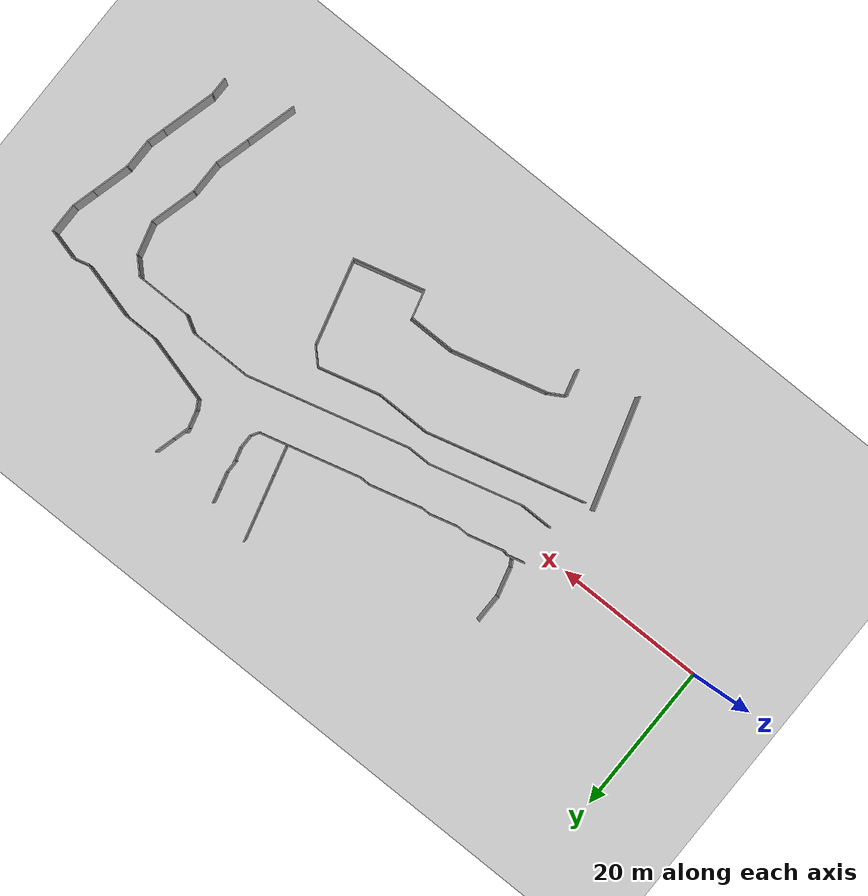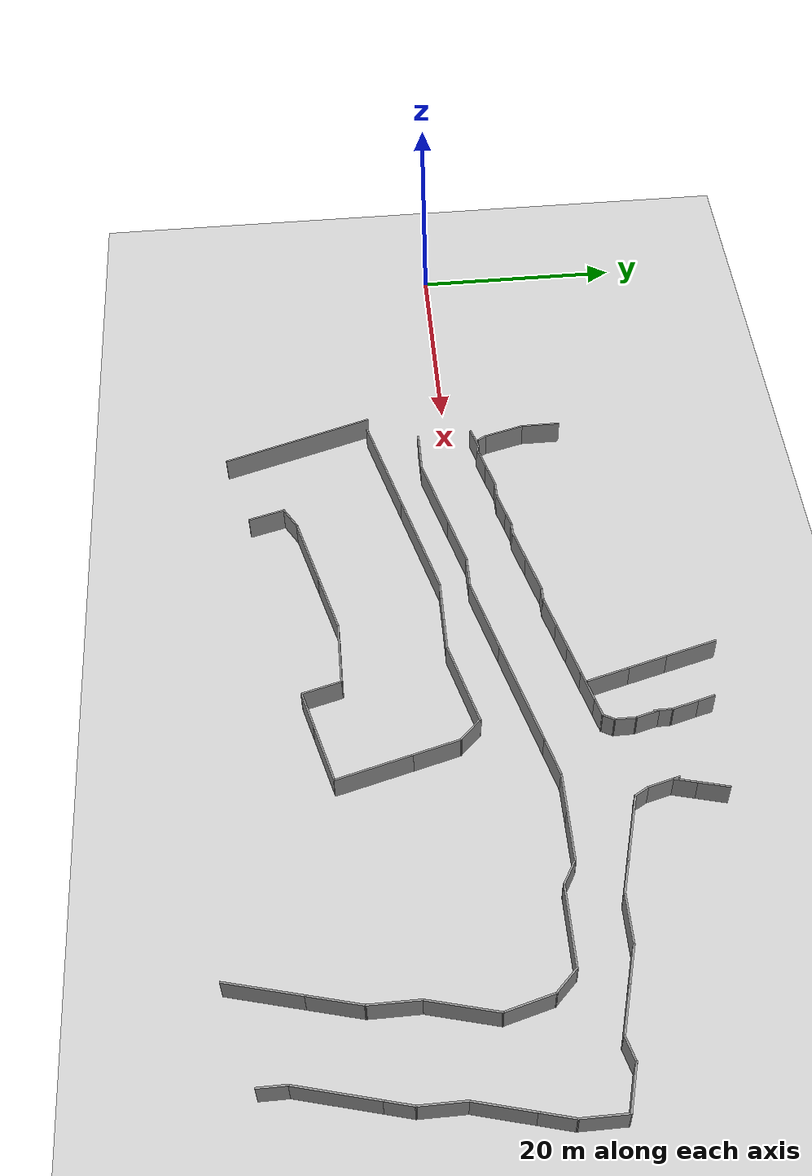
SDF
<sdf version="1.7">
 <world name="default">
  <model name="ground_plane">
   <static>1</static>
   <link name="link">
    <collision name="collision">
     <geometry><plane><normal>0 0 1</normal><size>500 500</size></plane></geometry>
     <surface><friction><ode><mu>100</mu><mu2>50</mu2></ode></friction></surface>
    </collision>
    <visual name="visual">
     <cast_shadows>0</cast_shadows>
     <geometry><plane><normal>0 0 1</normal><size>500 500</size></plane></geometry>
     <material>
      <script><uri>file://media/materials/scripts/gazebo.material</uri><name>Gazebo/Grey</name></script>
     </material>
    </visual>
   </link>
  </model>
  <model name="out_door1">
   <pose>25.5832 12.3476 0 0 -0 0</pose>
   <link name="Wall_119">
    <collision name="Wall_119_Collision">
     <geometry><box><size>2.5 0.15 2.5</size></box></geometry>
     <pose>0 0 1.25 0 -0 0</pose>
    </collision>
    <visual name="Wall_119_Visual">
     <pose>0 0 1.25 0 -0 0</pose>
     <geometry><box><size>2.5 0.15 2.5</size></box></geometry>
     <material>
      <script><uri>file://media/materials/scripts/gazebo.material</uri><name>Gazebo/Grey</name></script>
      <ambient>1 1 1 1</ambient>
     </material>
     <meta><layer>0</layer></meta>
    </visual>
    <pose>63.0354 -31.1015 0 0 -0 1.5708</pose>
   </link>
   <link name="Wall_123">
    <collision name="Wall_123_Collision">
     <geometry><box><size>7.25 0.15 2.5</size></box></geometry>
     <pose>0 0 1.25 0 -0 0</pose>
    </collision>
    <visual name="Wall_123_Visual">
     <pose>0 0 1.25 0 -0 0</pose>
     <geometry><box><size>7.25 0.15 2.5</size></box></geometry>
     <material>
      <script><uri>file://media/materials/scripts/gazebo.material</uri><name>Gazebo/Grey</name></script>
      <ambient>1 1 1 1</ambient>
     </material>
     <meta><layer>0</layer></meta>
    </visual>
    <pose>63.9542 -26.4975 0 0 -0 1.309</pose>
   </link>
   <link name="Wall_124">
    <collision name="Wall_124_Collision">
     <geometry><box><size>2.5 0.15 2.5</size></box></geometry>
     <pose>0 0 1.25 0 -0 0</pose>
    </collision>
    <visual name="Wall_124_Visual">
     <pose>0 0 1.25 0 -0 0</pose>
     <geometry><box><size>2.5 0.15 2.5</size></box></geometry>
     <material>
      <script><uri>file://media/materials/scripts/gazebo.material</uri><name>Gazebo/Grey</name></script>
      <ambient>1 1 1 1</ambient>
     </material>
     <meta><layer>0</layer></meta>
    </visual>
    <pose>65.1772 -21.9335 0 0 -0 1.309</pose>
   </link>
   <link name="Wall_125">
    <collision name="Wall_125_Collision">
     <geometry><box><size>4 0.15 2.5</size></box></geometry>
     <pose>0 0 1.25 0 -0 0</pose>
    </collision>
    <visual name="Wall_125_Visual">
     <pose>0 0 1.25 0 -0 0</pose>
     <geometry><box><size>4 0.15 2.5</size></box></geometry>
     <material>
      <script><uri>file://media/materials/scripts/gazebo.material</uri><name>Gazebo/Grey</name></script>
      <ambient>1 1 1 1</ambient>
     </material>
     <meta><layer>0</layer></meta>
    </visual>
    <pose>65.4813 -18.8735 0 0 -0 1.5708</pose>
   </link>
   <link name="Wall_126">
    <collision name="Wall_126_Collision">
     <geometry><box><size>5.25 0.15 2.5</size></box></geometry>
     <pose>0 0 1.25 0 -0 0</pose>
    </collision>
    <visual name="Wall_126_Visual">
     <pose>0 0 1.25 0 -0 0</pose>
     <geometry><box><size>5.25 0.15 2.5</size></box></geometry>
     <material>
      <script><uri>file://media/materials/scripts/gazebo.material</uri><name>Gazebo/Grey</name></script>
      <ambient>1 1 1 1</ambient>
     </material>
     <meta><layer>0</layer></meta>
    </visual>
    <pose>66.1413 -14.4854 0 0 -0 1.309</pose>
   </link>
   <link name="Wall_127">
    <collision name="Wall_127_Collision">
     <geometry><box><size>3 0.15 2.5</size></box></geometry>
     <pose>0 0 1.25 0 -0 0</pose>
    </collision>
    <visual name="Wall_127_Visual">
     <pose>0 0 1.25 0 -0 0</pose>
     <geometry><box><size>3 0.15 2.5</size></box></geometry>
     <material>
      <script><uri>file://media/materials/scripts/gazebo.material</uri><name>Gazebo/Grey</name></script>
      <ambient>1 1 1 1</ambient>
     </material>
     <meta><layer>0</layer></meta>
    </visual>
    <pose>67.1701 -10.6458 0 0 -0 1.309</pose>
   </link>
   <link name="Wall_128">
    <collision name="Wall_128_Collision">
     <geometry><box><size>4 0.15 2.5</size></box></geometry>
     <pose>0 0 1.25 0 -0 0</pose>
    </collision>
    <visual name="Wall_128_Visual">
     <pose>0 0 1.25 0 -0 0</pose>
     <geometry><box><size>4 0.15 2.5</size></box></geometry>
     <material>
      <script><uri>file://media/materials/scripts/gazebo.material</uri><name>Gazebo/Grey</name></script>
      <ambient>1 1 1 1</ambient>
     </material>
     <meta><layer>0</layer></meta>
    </visual>
    <pose>67.5389 -7.34439 0 0 -0 1.5708</pose>
   </link>
   <link name="Wall_129">
    <collision name="Wall_129_Collision">
     <geometry><box><size>4 0.15 2.5</size></box></geometry>
     <pose>0 0 1.25 0 -0 0</pose>
    </collision>
    <visual name="Wall_129_Visual">
     <pose>0 0 1.25 0 -0 0</pose>
     <geometry><box><size>4 0.15 2.5</size></box></geometry>
     <material>
      <script><uri>file://media/materials/scripts/gazebo.material</uri><name>Gazebo/Grey</name></script>
      <ambient>1 1 1 1</ambient>
     </material>
     <meta><layer>0</layer></meta>
    </visual>
    <pose>65.6795 -4.92117 0 0 -0 2.87979</pose>
   </link>
   <link name="Wall_130">
    <collision name="Wall_130_Collision">
     <geometry><box><size>2.25 0.15 2.5</size></box></geometry>
     <pose>0 0 1.25 0 -0 0</pose>
    </collision>
    <visual name="Wall_130_Visual">
     <pose>0 0 1.25 0 -0 0</pose>
     <geometry><box><size>2.25 0.15 2.5</size></box></geometry>
     <material>
      <script><uri>file://media/materials/scripts/gazebo.material</uri><name>Gazebo/Grey</name></script>
      <ambient>1 1 1 1</ambient>
     </material>
     <meta><layer>0</layer></meta>
    </visual>
    <pose>62.8059 -4.6947 0 0 -0 -2.87979</pose>
   </link>
   <link name="Wall_131">
    <collision name="Wall_131_Collision">
     <geometry><box><size>4.25 0.15 2.5</size></box></geometry>
     <pose>0 0 1.25 0 -0 0</pose>
    </collision>
    <visual name="Wall_131_Visual">
     <pose>0 0 1.25 0 -0 0</pose>
     <geometry><box><size>4.25 0.15 2.5</size></box></geometry>
     <material>
      <script><uri>file://media/materials/scripts/gazebo.material</uri><name>Gazebo/Grey</name></script>
      <ambient>1 1 1 1</ambient>
     </material>
     <meta><layer>0</layer></meta>
    </visual>
    <pose>59.8115 -4.43588 0 0 -0 2.87979</pose>
   </link>
   <link name="Wall_132">
    <collision name="Wall_132_Collision">
     <geometry><box><size>3.5 0.15 2.5</size></box></geometry>
     <pose>0 0 1.25 0 -0 0</pose>
    </collision>
    <visual name="Wall_132_Visual">
     <pose>0 0 1.25 0 -0 0</pose>
     <geometry><box><size>3.5 0.15 2.5</size></box></geometry>
     <material>
      <script><uri>file://media/materials/scripts/gazebo.material</uri><name>Gazebo/Grey</name></script>
      <ambient>1 1 1 1</ambient>
     </material>
     <meta><layer>0</layer></meta>
    </visual>
    <pose>56.2134 -3.47178 0 0 -0 2.87979</pose>
   </link>
   <link name="Wall_133">
    <collision name="Wall_133_Collision">
     <geometry><box><size>4.5 0.15 2.5</size></box></geometry>
     <pose>0 0 1.25 0 -0 0</pose>
    </collision>
    <visual name="Wall_133_Visual">
     <pose>0 0 1.25 0 -0 0</pose>
     <geometry><box><size>4.5 0.15 2.5</size></box></geometry>
     <material>
      <script><uri>file://media/materials/scripts/gazebo.material</uri><name>Gazebo/Grey</name></script>
      <ambient>1 1 1 1</ambient>
     </material>
     <meta><layer>0</layer></meta>
    </visual>
    <pose>52.4205 -3.03826 0 0 -0 3.14159</pose>
   </link>
   <link name="Wall_134">
    <collision name="Wall_134_Collision">
     <geometry><box><size>3 0.15 2.5</size></box></geometry>
     <pose>0 0 1.25 0 -0 0</pose>
    </collision>
    <visual name="Wall_134_Visual">
     <pose>0 0 1.25 0 -0 0</pose>
     <geometry><box><size>3 0.15 2.5</size></box></geometry>
     <material>
      <script><uri>file://media/materials/scripts/gazebo.material</uri><name>Gazebo/Grey</name></script>
      <ambient>1 1 1 1</ambient>
     </material>
     <meta><layer>0</layer></meta>
    </visual>
    <pose>48.869 -2.66944 0 0 -0 2.87979</pose>
   </link>
   <link name="Wall_135">
    <collision name="Wall_135_Collision">
     <geometry><box><size>6.25 0.15 2.5</size></box></geometry>
     <pose>0 0 1.25 0 -0 0</pose>
    </collision>
    <visual name="Wall_135_Visual">
     <pose>0 0 1.25 0 -0 0</pose>
     <geometry><box><size>6.25 0.15 2.5</size></box></geometry>
     <material>
      <script><uri>file://media/materials/scripts/gazebo.material</uri><name>Gazebo/Grey</name></script>
      <ambient>1 1 1 1</ambient>
     </material>
     <meta><layer>0</layer></meta>
    </visual>
    <pose>44.5465 -1.51123 0 0 -0 2.87979</pose>
   </link>
   <link name="Wall_136">
    <collision name="Wall_136_Collision">
     <geometry><box><size>1.5 0.15 2.5</size></box></geometry>
     <pose>0 0 1.25 0 -0 0</pose>
    </collision>
    <visual name="Wall_136_Visual">
     <pose>0 0 1.25 0 -0 0</pose>
     <geometry><box><size>1.5 0.15 2.5</size></box></geometry>
     <material>
      <script><uri>file://media/materials/scripts/gazebo.material</uri><name>Gazebo/Grey</name></script>
      <ambient>1 1 1 1</ambient>
     </material>
     <meta><layer>0</layer></meta>
    </visual>
    <pose>41.2629 -0.137262 0 0 -0 2.0944</pose>
   </link>
   <link name="Wall_137">
    <collision name="Wall_137_Collision">
     <geometry><box><size>3 0.15 2.5</size></box></geometry>
     <pose>0 0 1.25 0 -0 0</pose>
    </collision>
    <visual name="Wall_137_Visual">
     <pose>0 0 1.25 0 -0 0</pose>
     <geometry><box><size>3 0.15 2.5</size></box></geometry>
     <material>
      <script><uri>file://media/materials/scripts/gazebo.material</uri><name>Gazebo/Grey</name></script>
      <ambient>1 1 1 1</ambient>
     </material>
     <meta><layer>0</layer></meta>
    </visual>
    <pose>40.5566 1.82375 0 0 -0 1.8326</pose>
   </link>
   <link name="Wall_139">
    <collision name="Wall_139_Collision">
     <geometry><box><size>2.25 0.15 2.5</size></box></geometry>
     <pose>0 0 1.25 0 -0 0</pose>
    </collision>
    <visual name="Wall_139_Visual">
     <pose>0 0 1.25 0 -0 0</pose>
     <geometry><box><size>2.25 0.15 2.5</size></box></geometry>
     <material>
      <script><uri>file://media/materials/scripts/gazebo.material</uri><name>Gazebo/Grey</name></script>
      <ambient>1 1 1 1</ambient>
     </material>
     <meta><layer>0</layer></meta>
    </visual>
    <pose>40.599 3.69792 0 0 -0 1.309</pose>
   </link>
   <link name="Wall_140">
    <collision name="Wall_140_Collision">
     <geometry><box><size>2.75 0.15 2.5</size></box></geometry>
     <pose>0 0 1.25 0 -0 0</pose>
    </collision>
    <visual name="Wall_140_Visual">
     <pose>0 0 1.25 0 -0 0</pose>
     <geometry><box><size>2.75 0.15 2.5</size></box></geometry>
     <material>
      <script><uri>file://media/materials/scripts/gazebo.material</uri><name>Gazebo/Grey</name></script>
      <ambient>1 1 1 1</ambient>
     </material>
     <meta><layer>0</layer></meta>
    </visual>
    <pose>41.2073 5.96784 0 0 -0 1.309</pose>
   </link>
   <link name="Wall_355">
    <collision name="Wall_355_Collision">
     <geometry><box><size>1.75 0.15 2.5</size></box></geometry>
     <pose>0 0 1.25 0 -0 0</pose>
    </collision>
    <visual name="Wall_355_Visual">
     <pose>0 0 1.25 0 -0 0</pose>
     <geometry><box><size>1.75 0.15 2.5</size></box></geometry>
     <material>
      <script><uri>file://media/materials/scripts/gazebo.material</uri><name>Gazebo/Grey</name></script>
      <ambient>1 1 1 1</ambient>
     </material>
     <meta><layer>0</layer></meta>
    </visual>
    <pose>32.6842 6.92274 0 0 -0 -1.309</pose>
   </link>
   <link name="Wall_356">
    <collision name="Wall_356_Collision">
     <geometry><box><size>2.5 0.15 2.5</size></box></geometry>
     <pose>0 0 1.25 0 -0 0</pose>
    </collision>
    <visual name="Wall_356_Visual">
     <pose>0 0 1.25 0 -0 0</pose>
     <geometry><box><size>2.5 0.15 2.5</size></box></geometry>
     <material>
      <script><uri>file://media/materials/scripts/gazebo.material</uri><name>Gazebo/Grey</name></script>
      <ambient>1 1 1 1</ambient>
     </material>
     <meta><layer>0</layer></meta>
    </visual>
    <pose>33.1954 5.01504 0 0 -0 -1.309</pose>
   </link>
   <link name="Wall_357">
    <collision name="Wall_357_Collision">
     <geometry><box><size>1.75 0.15 2.5</size></box></geometry>
     <pose>0 0 1.25 0 -0 0</pose>
    </collision>
    <visual name="Wall_357_Visual">
     <pose>0 0 1.25 0 -0 0</pose>
     <geometry><box><size>1.75 0.15 2.5</size></box></geometry>
     <material>
      <script><uri>file://media/materials/scripts/gazebo.material</uri><name>Gazebo/Grey</name></script>
      <ambient>1 1 1 1</ambient>
     </material>
     <meta><layer>0</layer></meta>
    </visual>
    <pose>33.4995 3.08008 0 0 -0 -1.5708</pose>
   </link>
   <link name="Wall_359">
    <collision name="Wall_359_Collision">
     <geometry><box><size>2.25 0.15 2.5</size></box></geometry>
     <pose>0 0 1.25 0 -0 0</pose>
    </collision>
    <visual name="Wall_359_Visual">
     <pose>0 0 1.25 0 -0 0</pose>
     <geometry><box><size>2.25 0.15 2.5</size></box></geometry>
     <material>
      <script><uri>file://media/materials/scripts/gazebo.material</uri><name>Gazebo/Grey</name></script>
      <ambient>1 1 1 1</ambient>
     </material>
     <meta><layer>0</layer></meta>
    </visual>
    <pose>33.7873 1.63859 0 0 -0 -1.309</pose>
   </link>
   <link name="Wall_360">
    <collision name="Wall_360_Collision">
     <geometry><box><size>2 0.15 2.5</size></box></geometry>
     <pose>0 0 1.25 0 -0 0</pose>
    </collision>
    <visual name="Wall_360_Visual">
     <pose>0 0 1.25 0 -0 0</pose>
     <geometry><box><size>2 0.15 2.5</size></box></geometry>
     <material>
      <script><uri>file://media/materials/scripts/gazebo.material</uri><name>Gazebo/Grey</name></script>
      <ambient>1 1 1 1</ambient>
     </material>
     <meta><layer>0</layer></meta>
    </visual>
    <pose>34.0591 -0.300634 0 0 -0 -1.5708</pose>
   </link>
   <link name="Wall_361">
    <collision name="Wall_361_Collision">
     <geometry><box><size>1.25 0.15 2.5</size></box></geometry>
     <pose>0 0 1.25 0 -0 0</pose>
    </collision>
    <visual name="Wall_361_Visual">
     <pose>0 0 1.25 0 -0 0</pose>
     <geometry><box><size>1.25 0.15 2.5</size></box></geometry>
     <material>
      <script><uri>file://media/materials/scripts/gazebo.material</uri><name>Gazebo/Grey</name></script>
      <ambient>1 1 1 1</ambient>
     </material>
     <meta><layer>0</layer></meta>
    </visual>
    <pose>33.7841 -1.70195 0 0 -0 -2.0944</pose>
   </link>
   <link name="Wall_362">
    <collision name="Wall_362_Collision">
     <geometry><box><size>1.75 0.15 2.5</size></box></geometry>
     <pose>0 0 1.25 0 -0 0</pose>
    </collision>
    <visual name="Wall_362_Visual">
     <pose>0 0 1.25 0 -0 0</pose>
     <geometry><box><size>1.75 0.15 2.5</size></box></geometry>
     <material>
      <script><uri>file://media/materials/scripts/gazebo.material</uri><name>Gazebo/Grey</name></script>
      <ambient>1 1 1 1</ambient>
     </material>
     <meta><layer>0</layer></meta>
    </visual>
    <pose>32.7363 -2.38532 0 0 -0 -2.87979</pose>
   </link>
   <link name="Wall_363">
    <collision name="Wall_363_Collision">
     <geometry><box><size>3.25 0.15 2.5</size></box></geometry>
     <pose>0 0 1.25 0 -0 0</pose>
    </collision>
    <visual name="Wall_363_Visual">
     <pose>0 0 1.25 0 -0 0</pose>
     <geometry><box><size>3.25 0.15 2.5</size></box></geometry>
     <material>
      <script><uri>file://media/materials/scripts/gazebo.material</uri><name>Gazebo/Grey</name></script>
      <ambient>1 1 1 1</ambient>
     </material>
     <meta><layer>0</layer></meta>
    </visual>
    <pose>30.4664 -2.99354 0 0 -0 -2.87979</pose>
   </link>
   <link name="Wall_364">
    <collision name="Wall_364_Collision">
     <geometry><box><size>3 0.15 2.5</size></box></geometry>
     <pose>0 0 1.25 0 -0 0</pose>
    </collision>
    <visual name="Wall_364_Visual">
     <pose>0 0 1.25 0 -0 0</pose>
     <geometry><box><size>3 0.15 2.5</size></box></geometry>
     <material>
      <script><uri>file://media/materials/scripts/gazebo.material</uri><name>Gazebo/Grey</name></script>
      <ambient>1 1 1 1</ambient>
     </material>
     <meta><layer>0</layer></meta>
    </visual>
    <pose>27.5928 -3.76353 0 0 -0 -2.87979</pose>
   </link>
   <link name="Wall_366">
    <collision name="Wall_366_Collision">
     <geometry><box><size>2.75 0.15 2.5</size></box></geometry>
     <pose>0 0 1.25 0 -0 0</pose>
    </collision>
    <visual name="Wall_366_Visual">
     <pose>0 0 1.25 0 -0 0</pose>
     <geometry><box><size>2.75 0.15 2.5</size></box></geometry>
     <material>
      <script><uri>file://media/materials/scripts/gazebo.material</uri><name>Gazebo/Grey</name></script>
      <ambient>1 1 1 1</ambient>
     </material>
     <meta><layer>0</layer></meta>
    </visual>
    <pose>24.9606 -4.46881 0 0 -0 -2.87979</pose>
   </link>
   <link name="Wall_367">
    <collision name="Wall_367_Collision">
     <geometry><box><size>3.25 0.15 2.5</size></box></geometry>
     <pose>0 0 1.25 0 -0 0</pose>
    </collision>
    <visual name="Wall_367_Visual">
     <pose>0 0 1.25 0 -0 0</pose>
     <geometry><box><size>3.25 0.15 2.5</size></box></geometry>
     <material>
      <script><uri>file://media/materials/scripts/gazebo.material</uri><name>Gazebo/Grey</name></script>
      <ambient>1 1 1 1</ambient>
     </material>
     <meta><layer>0</layer></meta>
    </visual>
    <pose>22.2077 -5.20645 0 0 -0 -2.87979</pose>
   </link>
   <link name="Wall_368">
    <collision name="Wall_368_Collision">
     <geometry><box><size>1.5 0.15 2.5</size></box></geometry>
     <pose>0 0 1.25 0 -0 0</pose>
    </collision>
    <visual name="Wall_368_Visual">
     <pose>0 0 1.25 0 -0 0</pose>
     <geometry><box><size>1.5 0.15 2.5</size></box></geometry>
     <material>
      <script><uri>file://media/materials/scripts/gazebo.material</uri><name>Gazebo/Grey</name></script>
      <ambient>1 1 1 1</ambient>
     </material>
     <meta><layer>0</layer></meta>
    </visual>
    <pose>20.0356 -5.60762 0 0 -0 3.14159</pose>
   </link>
   <link name="Wall_369">
    <collision name="Wall_369_Collision">
     <geometry><box><size>3.75 0.15 2.5</size></box></geometry>
     <pose>0 0 1.25 0 -0 0</pose>
    </collision>
    <visual name="Wall_369_Visual">
     <pose>0 0 1.25 0 -0 0</pose>
     <geometry><box><size>3.75 0.15 2.5</size></box></geometry>
     <material>
      <script><uri>file://media/materials/scripts/gazebo.material</uri><name>Gazebo/Grey</name></script>
      <ambient>1 1 1 1</ambient>
     </material>
     <meta><layer>0</layer></meta>
    </visual>
    <pose>17.6219 -6.07349 0 0 -0 -2.87979</pose>
   </link>
   <link name="Wall_370">
    <collision name="Wall_370_Collision">
     <geometry><box><size>3.5 0.15 2.5</size></box></geometry>
     <pose>0 0 1.25 0 -0 0</pose>
    </collision>
    <visual name="Wall_370_Visual">
     <pose>0 0 1.25 0 -0 0</pose>
     <geometry><box><size>3.5 0.15 2.5</size></box></geometry>
     <material>
      <script><uri>file://media/materials/scripts/gazebo.material</uri><name>Gazebo/Grey</name></script>
      <ambient>1 1 1 1</ambient>
     </material>
     <meta><layer>0</layer></meta>
    </visual>
    <pose>14.2653 -6.97288 0 0 -0 -2.87979</pose>
   </link>
   <link name="Wall_371">
    <collision name="Wall_371_Collision">
     <geometry><box><size>1.25 0.15 2.5</size></box></geometry>
     <pose>0 0 1.25 0 -0 0</pose>
    </collision>
    <visual name="Wall_371_Visual">
     <pose>0 0 1.25 0 -0 0</pose>
     <geometry><box><size>1.25 0.15 2.5</size></box></geometry>
     <material>
      <script><uri>file://media/materials/scripts/gazebo.material</uri><name>Gazebo/Grey</name></script>
      <ambient>1 1 1 1</ambient>
     </material>
     <meta><layer>0</layer></meta>
    </visual>
    <pose>12.0974 -7.40641 0 0 -0 3.14159</pose>
   </link>
   <link name="Wall_372">
    <collision name="Wall_372_Collision">
     <geometry><box><size>1.5 0.15 2.5</size></box></geometry>
     <pose>0 0 1.25 0 -0 0</pose>
    </collision>
    <visual name="Wall_372_Visual">
     <pose>0 0 1.25 0 -0 0</pose>
     <geometry><box><size>1.5 0.15 2.5</size></box></geometry>
     <material>
      <script><uri>file://media/materials/scripts/gazebo.material</uri><name>Gazebo/Grey</name></script>
      <ambient>1 1 1 1</ambient>
     </material>
     <meta><layer>0</layer></meta>
    </visual>
    <pose>10.8954 -7.58111 0 0 -0 -2.87979</pose>
   </link>
   <link name="Wall_373">
    <collision name="Wall_373_Collision">
     <geometry><box><size>2.5 0.15 2.5</size></box></geometry>
     <pose>0 0 1.25 0 -0 0</pose>
    </collision>
    <visual name="Wall_373_Visual">
     <pose>0 0 1.25 0 -0 0</pose>
     <geometry><box><size>2.5 0.15 2.5</size></box></geometry>
     <material>
      <script><uri>file://media/materials/scripts/gazebo.material</uri><name>Gazebo/Grey</name></script>
      <ambient>1 1 1 1</ambient>
     </material>
     <meta><layer>0</layer></meta>
    </visual>
    <pose>9.1084 -8.05992 0 0 -0 -2.87979</pose>
   </link>
   <link name="Wall_374">
    <collision name="Wall_374_Collision">
     <geometry><box><size>1.75 0.15 2.5</size></box></geometry>
     <pose>0 0 1.25 0 -0 0</pose>
    </collision>
    <visual name="Wall_374_Visual">
     <pose>0 0 1.25 0 -0 0</pose>
     <geometry><box><size>1.75 0.15 2.5</size></box></geometry>
     <material>
      <script><uri>file://media/materials/scripts/gazebo.material</uri><name>Gazebo/Grey</name></script>
      <ambient>1 1 1 1</ambient>
     </material>
     <meta><layer>0</layer></meta>
    </visual>
    <pose>7.17344 -8.36404 0 0 -0 3.14159</pose>
   </link>
   <link name="Wall_375">
    <collision name="Wall_375_Collision">
     <geometry><box><size>2.5 0.15 2.5</size></box></geometry>
     <pose>0 0 1.25 0 -0 0</pose>
    </collision>
    <visual name="Wall_375_Visual">
     <pose>0 0 1.25 0 -0 0</pose>
     <geometry><box><size>2.5 0.15 2.5</size></box></geometry>
     <material>
      <script><uri>file://media/materials/scripts/gazebo.material</uri><name>Gazebo/Grey</name></script>
      <ambient>1 1 1 1</ambient>
     </material>
     <meta><layer>0</layer></meta>
    </visual>
    <pose>5.23848 -8.66815 0 0 -0 -2.87979</pose>
   </link>
   <link name="Wall_376">
    <collision name="Wall_376_Collision">
     <geometry><box><size>2.5 0.15 2.5</size></box></geometry>
     <pose>0 0 1.25 0 -0 0</pose>
    </collision>
    <visual name="Wall_376_Visual">
     <pose>0 0 1.25 0 -0 0</pose>
     <geometry><box><size>2.5 0.15 2.5</size></box></geometry>
     <material>
      <script><uri>file://media/materials/scripts/gazebo.material</uri><name>Gazebo/Grey</name></script>
      <ambient>1 1 1 1</ambient>
     </material>
     <meta><layer>0</layer></meta>
    </visual>
    <pose>2.96855 -9.27637 0 0 -0 -2.87979</pose>
   </link>
   <link name="Wall_381">
    <collision name="Wall_381_Collision">
     <geometry><box><size>0.75 0.15 2.5</size></box></geometry>
     <pose>0 0 1.25 0 -0 0</pose>
    </collision>
    <visual name="Wall_381_Visual">
     <pose>0 0 1.25 0 -0 0</pose>
     <geometry><box><size>0.75 0.15 2.5</size></box></geometry>
     <material>
      <script><uri>file://media/materials/scripts/gazebo.material</uri><name>Gazebo/Grey</name></script>
      <ambient>1 1 1 1</ambient>
     </material>
     <meta><layer>0</layer></meta>
    </visual>
    <pose>1.54381 -9.50284 0 0 -0 2.87979</pose>
   </link>
   <link name="Wall_382">
    <collision name="Wall_382_Collision">
     <geometry><box><size>2.25 0.15 2.5</size></box></geometry>
     <pose>0 0 1.25 0 -0 0</pose>
    </collision>
    <visual name="Wall_382_Visual">
     <pose>0 0 1.25 0 -0 0</pose>
     <geometry><box><size>2.25 0.15 2.5</size></box></geometry>
     <material>
      <script><uri>file://media/materials/scripts/gazebo.material</uri><name>Gazebo/Grey</name></script>
      <ambient>1 1 1 1</ambient>
     </material>
     <meta><layer>0</layer></meta>
    </visual>
    <pose>0.239811 -9.69696 0 0 -0 -2.87979</pose>
   </link>
   <link name="Wall_446">
    <collision name="Wall_446_Collision">
     <geometry><box><size>3.75 0.15 2.5</size></box></geometry>
     <pose>0 0 1.25 0 -0 0</pose>
    </collision>
    <visual name="Wall_446_Visual">
     <pose>0 0 1.25 0 -0 0</pose>
     <geometry><box><size>3.75 0.15 2.5</size></box></geometry>
     <material>
      <script><uri>file://media/materials/scripts/gazebo.material</uri><name>Gazebo/Grey</name></script>
      <ambient>1 1 1 1</ambient>
     </material>
     <meta><layer>0</layer></meta>
    </visual>
    <pose>-0.980412 -3.05886 0 0 -0 -1.5708</pose>
   </link>
   <link name="Wall_447">
    <collision name="Wall_447_Collision">
     <geometry><box><size>4 0.15 2.5</size></box></geometry>
     <pose>0 0 1.25 0 -0 0</pose>
    </collision>
    <visual name="Wall_447_Visual">
     <pose>0 0 1.25 0 -0 0</pose>
     <geometry><box><size>4 0.15 2.5</size></box></geometry>
     <material>
      <script><uri>file://media/materials/scripts/gazebo.material</uri><name>Gazebo/Grey</name></script>
      <ambient>1 1 1 1</ambient>
     </material>
     <meta><layer>0</layer></meta>
    </visual>
    <pose>-0.482185 -6.71826 0 0 -0 -1.309</pose>
   </link>
   <link name="Wall_448">
    <collision name="Wall_448_Collision">
     <geometry><box><size>1 0.15 2.5</size></box></geometry>
     <pose>0 0 1.25 0 -0 0</pose>
    </collision>
    <visual name="Wall_448_Visual">
     <pose>0 0 1.25 0 -0 0</pose>
     <geometry><box><size>1 0.15 2.5</size></box></geometry>
     <material>
      <script><uri>file://media/materials/scripts/gazebo.material</uri><name>Gazebo/Grey</name></script>
      <ambient>1 1 1 1</ambient>
     </material>
     <meta><layer>0</layer></meta>
    </visual>
    <pose>0.228542 -8.94573 0 0 -0 -1.0472</pose>
   </link>
   <link name="Wall_473">
    <collision name="Wall_473_Collision">
     <geometry><box><size>5 0.15 2.5</size></box></geometry>
     <pose>0 0 1.25 0 -0 0</pose>
    </collision>
    <visual name="Wall_473_Visual">
     <pose>0 0 1.25 0 -0 0</pose>
     <geometry><box><size>5 0.15 2.5</size></box></geometry>
     <material>
      <script><uri>file://media/materials/scripts/gazebo.material</uri><name>Gazebo/Grey</name></script>
      <ambient>1 1 1 1</ambient>
     </material>
     <meta><layer>0</layer></meta>
    </visual>
    <pose>27.3452 6.61122 0 0 -0 -1.309</pose>
   </link>
   <link name="Wall_474">
    <collision name="Wall_474_Collision">
     <geometry><box><size>3.75 0.15 2.5</size></box></geometry>
     <pose>0 0 1.25 0 -0 0</pose>
    </collision>
    <visual name="Wall_474_Visual">
     <pose>0 0 1.25 0 -0 0</pose>
     <geometry><box><size>3.75 0.15 2.5</size></box></geometry>
     <material>
      <script><uri>file://media/materials/scripts/gazebo.material</uri><name>Gazebo/Grey</name></script>
      <ambient>1 1 1 1</ambient>
     </material>
     <meta><layer>0</layer></meta>
    </visual>
    <pose>28.4387 2.53018 0 0 -0 -1.309</pose>
   </link>
   <link name="Wall_475">
    <collision name="Wall_475_Collision">
     <geometry><box><size>4 0.15 2.5</size></box></geometry>
     <pose>0 0 1.25 0 -0 0</pose>
    </collision>
    <visual name="Wall_475_Visual">
     <pose>0 0 1.25 0 -0 0</pose>
     <geometry><box><size>4 0.15 2.5</size></box></geometry>
     <material>
      <script><uri>file://media/materials/scripts/gazebo.material</uri><name>Gazebo/Grey</name></script>
      <ambient>1 1 1 1</ambient>
     </material>
     <meta><layer>0</layer></meta>
    </visual>
    <pose>29.4028 -1.0679 0 0 -0 -1.309</pose>
   </link>
   <link name="Wall_496">
    <collision name="Wall_496_Collision">
     <geometry><box><size>6.75 0.15 2.5</size></box></geometry>
     <pose>0 0 1.25 0 -0 0</pose>
    </collision>
    <visual name="Wall_496_Visual">
     <pose>0 0 1.25 0 -0 0</pose>
     <geometry><box><size>6.75 0.15 2.5</size></box></geometry>
     <material>
      <script><uri>file://media/materials/scripts/gazebo.material</uri><name>Gazebo/Grey</name></script>
      <ambient>1 1 1 1</ambient>
     </material>
     <meta><layer>0</layer></meta>
    </visual>
    <pose>55.4529 -31.6026 0 0 -0 1.309</pose>
   </link>
   <link name="Wall_497">
    <collision name="Wall_497_Collision">
     <geometry><box><size>4.75 0.15 2.5</size></box></geometry>
     <pose>0 0 1.25 0 -0 0</pose>
    </collision>
    <visual name="Wall_497_Visual">
     <pose>0 0 1.25 0 -0 0</pose>
     <geometry><box><size>4.75 0.15 2.5</size></box></geometry>
     <material>
      <script><uri>file://media/materials/scripts/gazebo.material</uri><name>Gazebo/Grey</name></script>
      <ambient>1 1 1 1</ambient>
     </material>
     <meta><layer>0</layer></meta>
    </visual>
    <pose>56.9023 -26.1934 0 0 -0 1.309</pose>
   </link>
   <link name="Wall_498">
    <collision name="Wall_498_Collision">
     <geometry><box><size>4.5 0.15 2.5</size></box></geometry>
     <pose>0 0 1.25 0 -0 0</pose>
    </collision>
    <visual name="Wall_498_Visual">
     <pose>0 0 1.25 0 -0 0</pose>
     <geometry><box><size>4.5 0.15 2.5</size></box></geometry>
     <material>
      <script><uri>file://media/materials/scripts/gazebo.material</uri><name>Gazebo/Grey</name></script>
      <ambient>1 1 1 1</ambient>
     </material>
     <meta><layer>0</layer></meta>
    </visual>
    <pose>57.4976 -21.7968 0 0 -0 1.5708</pose>
   </link>
   <link name="Wall_499">
    <collision name="Wall_499_Collision">
     <geometry><box><size>6.25 0.15 2.5</size></box></geometry>
     <pose>0 0 1.25 0 -0 0</pose>
    </collision>
    <visual name="Wall_499_Visual">
     <pose>0 0 1.25 0 -0 0</pose>
     <geometry><box><size>6.25 0.15 2.5</size></box></geometry>
     <material>
      <script><uri>file://media/materials/scripts/gazebo.material</uri><name>Gazebo/Grey</name></script>
      <ambient>1 1 1 1</ambient>
     </material>
     <meta><layer>0</layer></meta>
    </visual>
    <pose>58.287 -16.6757 0 0 -0 1.309</pose>
   </link>
   <link name="Wall_500">
    <collision name="Wall_500_Collision">
     <geometry><box><size>4.5 0.15 2.5</size></box></geometry>
     <pose>0 0 1.25 0 -0 0</pose>
    </collision>
    <visual name="Wall_500_Visual">
     <pose>0 0 1.25 0 -0 0</pose>
     <geometry><box><size>4.5 0.15 2.5</size></box></geometry>
     <material>
      <script><uri>file://media/materials/scripts/gazebo.material</uri><name>Gazebo/Grey</name></script>
      <ambient>1 1 1 1</ambient>
     </material>
     <meta><layer>0</layer></meta>
    </visual>
    <pose>58.5135 -11.6287 0 0 -0 1.8326</pose>
   </link>
   <link name="Wall_501">
    <collision name="Wall_501_Collision">
     <geometry><box><size>2.75 0.15 2.5</size></box></geometry>
     <pose>0 0 1.25 0 -0 0</pose>
    </collision>
    <visual name="Wall_501_Visual">
     <pose>0 0 1.25 0 -0 0</pose>
     <geometry><box><size>2.75 0.15 2.5</size></box></geometry>
     <material>
      <script><uri>file://media/materials/scripts/gazebo.material</uri><name>Gazebo/Grey</name></script>
      <ambient>1 1 1 1</ambient>
     </material>
     <meta><layer>0</layer></meta>
    </visual>
    <pose>57.0313 -8.6086 0 0 -0 2.35619</pose>
   </link>
   <link name="Wall_502">
    <collision name="Wall_502_Collision">
     <geometry><box><size>7.25 0.15 2.5</size></box></geometry>
     <pose>0 0 1.25 0 -0 0</pose>
    </collision>
    <visual name="Wall_502_Visual">
     <pose>0 0 1.25 0 -0 0</pose>
     <geometry><box><size>7.25 0.15 2.5</size></box></geometry>
     <material>
      <script><uri>file://media/materials/scripts/gazebo.material</uri><name>Gazebo/Grey</name></script>
      <ambient>1 1 1 1</ambient>
     </material>
     <meta><layer>0</layer></meta>
    </visual>
    <pose>52.5621 -7.68936 0 0 -0 3.14159</pose>
   </link>
   <link name="Wall_503">
    <collision name="Wall_503_Collision">
     <geometry><box><size>2.5 0.15 2.5</size></box></geometry>
     <pose>0 0 1.25 0 -0 0</pose>
    </collision>
    <visual name="Wall_503_Visual">
     <pose>0 0 1.25 0 -0 0</pose>
     <geometry><box><size>2.5 0.15 2.5</size></box></geometry>
     <material>
      <script><uri>file://media/materials/scripts/gazebo.material</uri><name>Gazebo/Grey</name></script>
      <ambient>1 1 1 1</ambient>
     </material>
     <meta><layer>0</layer></meta>
    </visual>
    <pose>47.9945 -7.10186 0 0 -0 2.61799</pose>
   </link>
   <link name="Wall_504">
    <collision name="Wall_504_Collision">
     <geometry><box><size>4.75 0.15 2.5</size></box></geometry>
     <pose>0 0 1.25 0 -0 0</pose>
    </collision>
    <visual name="Wall_504_Visual">
     <pose>0 0 1.25 0 -0 0</pose>
     <geometry><box><size>4.75 0.15 2.5</size></box></geometry>
     <material>
      <script><uri>file://media/materials/scripts/gazebo.material</uri><name>Gazebo/Grey</name></script>
      <ambient>1 1 1 1</ambient>
     </material>
     <meta><layer>0</layer></meta>
    </visual>
    <pose>44.6769 -6.51436 0 0 -0 3.14159</pose>
   </link>
   <link name="Wall_505">
    <collision name="Wall_505_Collision">
     <geometry><box><size>3.5 0.15 2.5</size></box></geometry>
     <pose>0 0 1.25 0 -0 0</pose>
    </collision>
    <visual name="Wall_505_Visual">
     <pose>0 0 1.25 0 -0 0</pose>
     <geometry><box><size>3.5 0.15 2.5</size></box></geometry>
     <material>
      <script><uri>file://media/materials/scripts/gazebo.material</uri><name>Gazebo/Grey</name></script>
      <ambient>1 1 1 1</ambient>
     </material>
     <meta><layer>0</layer></meta>
    </visual>
    <pose>40.7019 -6.51436 0 0 -0 3.14159</pose>
   </link>
   <link name="Wall_506">
    <collision name="Wall_506_Collision">
     <geometry><box><size>3.75 0.15 2.5</size></box></geometry>
     <pose>0 0 1.25 0 -0 0</pose>
    </collision>
    <visual name="Wall_506_Visual">
     <pose>0 0 1.25 0 -0 0</pose>
     <geometry><box><size>3.75 0.15 2.5</size></box></geometry>
     <material>
      <script><uri>file://media/materials/scripts/gazebo.material</uri><name>Gazebo/Grey</name></script>
      <ambient>1 1 1 1</ambient>
     </material>
     <meta><layer>0</layer></meta>
    </visual>
    <pose>37.2882 -6.98024 0 0 -0 -2.87979</pose>
   </link>
   <link name="Wall_507">
    <collision name="Wall_507_Collision">
     <geometry><box><size>10.5 0.15 2.5</size></box></geometry>
     <pose>0 0 1.25 0 -0 0</pose>
    </collision>
    <visual name="Wall_507_Visual">
     <pose>0 0 1.25 0 -0 0</pose>
     <geometry><box><size>10.5 0.15 2.5</size></box></geometry>
     <material>
      <script><uri>file://media/materials/scripts/gazebo.material</uri><name>Gazebo/Grey</name></script>
      <ambient>1 1 1 1</ambient>
     </material>
     <meta><layer>0</layer></meta>
    </visual>
    <pose>30.5509 -8.7855 0 0 -0 -2.87979</pose>
   </link>
   <link name="Wall_508">
    <collision name="Wall_508_Collision">
     <geometry><box><size>7.5 0.15 2.5</size></box></geometry>
     <pose>0 0 1.25 0 -0 0</pose>
    </collision>
    <visual name="Wall_508_Visual">
     <pose>0 0 1.25 0 -0 0</pose>
     <geometry><box><size>7.5 0.15 2.5</size></box></geometry>
     <material>
      <script><uri>file://media/materials/scripts/gazebo.material</uri><name>Gazebo/Grey</name></script>
      <ambient>1 1 1 1</ambient>
     </material>
     <meta><layer>0</layer></meta>
    </visual>
    <pose>22.0025 -11.076 0 0 -0 -2.87979</pose>
   </link>
   <link name="Wall_509">
    <collision name="Wall_509_Collision">
     <geometry><box><size>3.25 0.15 2.5</size></box></geometry>
     <pose>0 0 1.25 0 -0 0</pose>
    </collision>
    <visual name="Wall_509_Visual">
     <pose>0 0 1.25 0 -0 0</pose>
     <geometry><box><size>3.25 0.15 2.5</size></box></geometry>
     <material>
      <script><uri>file://media/materials/scripts/gazebo.material</uri><name>Gazebo/Grey</name></script>
      <ambient>1 1 1 1</ambient>
     </material>
     <meta><layer>0</layer></meta>
    </visual>
    <pose>16.9027 -12.0272 0 0 -0 3.14159</pose>
   </link>
   <link name="Wall_510">
    <collision name="Wall_510_Collision">
     <geometry><box><size>5 0.15 2.5</size></box></geometry>
     <pose>0 0 1.25 0 -0 0</pose>
    </collision>
    <visual name="Wall_510_Visual">
     <pose>0 0 1.25 0 -0 0</pose>
     <geometry><box><size>5 0.15 2.5</size></box></geometry>
     <material>
      <script><uri>file://media/materials/scripts/gazebo.material</uri><name>Gazebo/Grey</name></script>
      <ambient>1 1 1 1</ambient>
     </material>
     <meta><layer>0</layer></meta>
    </visual>
    <pose>13.0103 -12.6548 0 0 -0 -2.87979</pose>
   </link>
   <link name="Wall_511">
    <collision name="Wall_511_Collision">
     <geometry><box><size>7.5 0.15 2.5</size></box></geometry>
     <pose>0 0 1.25 0 -0 0</pose>
    </collision>
    <visual name="Wall_511_Visual">
     <pose>0 0 1.25 0 -0 0</pose>
     <geometry><box><size>7.5 0.15 2.5</size></box></geometry>
     <material>
      <script><uri>file://media/materials/scripts/gazebo.material</uri><name>Gazebo/Grey</name></script>
      <ambient>1 1 1 1</ambient>
     </material>
     <meta><layer>0</layer></meta>
    </visual>
    <pose>7.11816 -14.2336 0 0 -0 -2.87979</pose>
   </link>
   <link name="Wall_512">
    <collision name="Wall_512_Collision">
     <geometry><box><size>4.25 0.15 2.5</size></box></geometry>
     <pose>0 0 1.25 0 -0 0</pose>
    </collision>
    <visual name="Wall_512_Visual">
     <pose>0 0 1.25 0 -0 0</pose>
     <geometry><box><size>4.25 0.15 2.5</size></box></geometry>
     <material>
      <script><uri>file://media/materials/scripts/gazebo.material</uri><name>Gazebo/Grey</name></script>
      <ambient>1 1 1 1</ambient>
     </material>
     <meta><layer>0</layer></meta>
    </visual>
    <pose>1.51838 -15.1848 0 0 -0 3.14159</pose>
   </link>
   <link name="Wall_516">
    <collision name="Wall_516_Collision">
     <geometry><box><size>10.25 0.15 2.5</size></box></geometry>
     <pose>0 0 1.25 0 -0 0</pose>
    </collision>
    <visual name="Wall_516_Visual">
     <pose>0 0 1.25 0 -0 0</pose>
     <geometry><box><size>10.25 0.15 2.5</size></box></geometry>
     <material>
      <script><uri>file://media/materials/scripts/gazebo.material</uri><name>Gazebo/Grey</name></script>
      <ambient>1 1 1 1</ambient>
     </material>
     <meta><layer>0</layer></meta>
    </visual>
    <pose>2.92522 -18.8073 0 0 -0 0.261799</pose>
   </link>
   <link name="Wall_517">
    <collision name="Wall_517_Collision">
     <geometry><box><size>10.75 0.15 2.5</size></box></geometry>
     <pose>0 0 1.25 0 -0 0</pose>
    </collision>
    <visual name="Wall_517_Visual">
     <pose>0 0 1.25 0 -0 0</pose>
     <geometry><box><size>10.75 0.15 2.5</size></box></geometry>
     <material>
      <script><uri>file://media/materials/scripts/gazebo.material</uri><name>Gazebo/Grey</name></script>
      <ambient>1 1 1 1</ambient>
     </material>
     <meta><layer>0</layer></meta>
    </visual>
    <pose>12.9226 -16.1285 0 0 -0 0.261799</pose>
   </link>
   <link name="Wall_518">
    <collision name="Wall_518_Collision">
     <geometry><box><size>7.25 0.15 2.5</size></box></geometry>
     <pose>0 0 1.25 0 -0 0</pose>
    </collision>
    <visual name="Wall_518_Visual">
     <pose>0 0 1.25 0 -0 0</pose>
     <geometry><box><size>7.25 0.15 2.5</size></box></geometry>
     <material>
      <script><uri>file://media/materials/scripts/gazebo.material</uri><name>Gazebo/Grey</name></script>
      <ambient>1 1 1 1</ambient>
     </material>
     <meta><layer>0</layer></meta>
    </visual>
    <pose>21.592 -14.7568 0 0 -0 0</pose>
   </link>
   <link name="Wall_519">
    <collision name="Wall_519_Collision">
     <geometry><box><size>8.25 0.15 2.5</size></box></geometry>
     <pose>0 0 1.25 0 -0 0</pose>
    </collision>
    <visual name="Wall_519_Visual">
     <pose>0 0 1.25 0 -0 0</pose>
     <geometry><box><size>8.25 0.15 2.5</size></box></geometry>
     <material>
      <script><uri>file://media/materials/scripts/gazebo.material</uri><name>Gazebo/Grey</name></script>
      <ambient>1 1 1 1</ambient>
     </material>
     <meta><layer>0</layer></meta>
    </visual>
    <pose>29.054 -13.7086 0 0 -0 0.261799</pose>
   </link>
   <link name="Wall_520">
    <collision name="Wall_520_Collision">
     <geometry><box><size>2.75 0.15 2.5</size></box></geometry>
     <pose>0 0 1.25 0 -0 0</pose>
    </collision>
    <visual name="Wall_520_Visual">
     <pose>0 0 1.25 0 -0 0</pose>
     <geometry><box><size>2.75 0.15 2.5</size></box></geometry>
     <material>
      <script><uri>file://media/materials/scripts/gazebo.material</uri><name>Gazebo/Grey</name></script>
      <ambient>1 1 1 1</ambient>
     </material>
     <meta><layer>0</layer></meta>
    </visual>
    <pose>33.8852 -13.5796 0 0 -0 -0.785398</pose>
   </link>
   <link name="Wall_521">
    <collision name="Wall_521_Collision">
     <geometry><box><size>4.5 0.15 2.5</size></box></geometry>
     <pose>0 0 1.25 0 -0 0</pose>
    </collision>
    <visual name="Wall_521_Visual">
     <pose>0 0 1.25 0 -0 0</pose>
     <geometry><box><size>4.5 0.15 2.5</size></box></geometry>
     <material>
      <script><uri>file://media/materials/scripts/gazebo.material</uri><name>Gazebo/Grey</name></script>
      <ambient>1 1 1 1</ambient>
     </material>
     <meta><layer>0</layer></meta>
    </visual>
    <pose>35.3674 -16.5997 0 0 -0 -1.309</pose>
   </link>
   <link name="Wall_522">
    <collision name="Wall_522_Collision">
     <geometry><box><size>7 0.15 2.5</size></box></geometry>
     <pose>0 0 1.25 0 -0 0</pose>
    </collision>
    <visual name="Wall_522_Visual">
     <pose>0 0 1.25 0 -0 0</pose>
     <geometry><box><size>7 0.15 2.5</size></box></geometry>
     <material>
      <script><uri>file://media/materials/scripts/gazebo.material</uri><name>Gazebo/Grey</name></script>
      <ambient>1 1 1 1</ambient>
     </material>
     <meta><layer>0</layer></meta>
    </visual>
    <pose>36.8168 -22.0089 0 0 -0 -1.309</pose>
   </link>
   <link name="Wall_523">
    <collision name="Wall_523_Collision">
     <geometry><box><size>5.75 0.15 2.5</size></box></geometry>
     <pose>0 0 1.25 0 -0 0</pose>
    </collision>
    <visual name="Wall_523_Visual">
     <pose>0 0 1.25 0 -0 0</pose>
     <geometry><box><size>5.75 0.15 2.5</size></box></geometry>
     <material>
      <script><uri>file://media/materials/scripts/gazebo.material</uri><name>Gazebo/Grey</name></script>
      <ambient>1 1 1 1</ambient>
     </material>
     <meta><layer>0</layer></meta>
    </visual>
    <pose>34.9986 -26.0419 0 0 -0 -2.87979</pose>
   </link>
   <link name="Wall_524">
    <collision name="Wall_524_Collision">
     <geometry><box><size>3.75 0.15 2.5</size></box></geometry>
     <pose>0 0 1.25 0 -0 0</pose>
    </collision>
    <visual name="Wall_524_Visual">
     <pose>0 0 1.25 0 -0 0</pose>
     <geometry><box><size>3.75 0.15 2.5</size></box></geometry>
     <material>
      <script><uri>file://media/materials/scripts/gazebo.material</uri><name>Gazebo/Grey</name></script>
      <ambient>1 1 1 1</ambient>
     </material>
     <meta><layer>0</layer></meta>
    </visual>
    <pose>30.5554 -27.2324 0 0 -0 -2.87979</pose>
   </link>
   <link name="Wall_525">
    <collision name="Wall_525_Collision">
     <geometry><box><size>3.75 0.15 2.5</size></box></geometry>
     <pose>0 0 1.25 0 -0 0</pose>
    </collision>
    <visual name="Wall_525_Visual">
     <pose>0 0 1.25 0 -0 0</pose>
     <geometry><box><size>3.75 0.15 2.5</size></box></geometry>
     <material>
      <script><uri>file://media/materials/scripts/gazebo.material</uri><name>Gazebo/Grey</name></script>
      <ambient>1 1 1 1</ambient>
     </material>
     <meta><layer>0</layer></meta>
    </visual>
    <pose>28.3508 -25.9597 0 0 -0 1.8326</pose>
   </link>
   <link name="Wall_526">
    <collision name="Wall_526_Collision">
     <geometry><box><size>6.25 0.15 2.5</size></box></geometry>
     <pose>0 0 1.25 0 -0 0</pose>
    </collision>
    <visual name="Wall_526_Visual">
     <pose>0 0 1.25 0 -0 0</pose>
     <geometry><box><size>6.25 0.15 2.5</size></box></geometry>
     <material>
      <script><uri>file://media/materials/scripts/gazebo.material</uri><name>Gazebo/Grey</name></script>
      <ambient>1 1 1 1</ambient>
     </material>
     <meta><layer>0</layer></meta>
    </visual>
    <pose>24.8349 -24.221 0 0 -0 3.14159</pose>
   </link>
   <link name="Wall_527">
    <collision name="Wall_527_Collision">
     <geometry><box><size>5.75 0.15 2.5</size></box></geometry>
     <pose>0 0 1.25 0 -0 0</pose>
    </collision>
    <visual name="Wall_527_Visual">
     <pose>0 0 1.25 0 -0 0</pose>
     <geometry><box><size>5.75 0.15 2.5</size></box></geometry>
     <material>
      <script><uri>file://media/materials/scripts/gazebo.material</uri><name>Gazebo/Grey</name></script>
      <ambient>1 1 1 1</ambient>
     </material>
     <meta><layer>0</layer></meta>
    </visual>
    <pose>19.0804 -24.9457 0 0 -0 -2.87979</pose>
   </link>
   <link name="Wall_528">
    <collision name="Wall_528_Collision">
     <geometry><box><size>7 0.15 2.5</size></box></geometry>
     <pose>0 0 1.25 0 -0 0</pose>
    </collision>
    <visual name="Wall_528_Visual">
     <pose>0 0 1.25 0 -0 0</pose>
     <geometry><box><size>7 0.15 2.5</size></box></geometry>
     <material>
      <script><uri>file://media/materials/scripts/gazebo.material</uri><name>Gazebo/Grey</name></script>
      <ambient>1 1 1 1</ambient>
     </material>
     <meta><layer>0</layer></meta>
    </visual>
    <pose>13.0675 -26.5568 0 0 -0 -2.87979</pose>
   </link>
   <link name="Wall_529">
    <collision name="Wall_529_Collision">
     <geometry><box><size>2.5 0.15 2.5</size></box></geometry>
     <pose>0 0 1.25 0 -0 0</pose>
    </collision>
    <visual name="Wall_529_Visual">
     <pose>0 0 1.25 0 -0 0</pose>
     <geometry><box><size>2.5 0.15 2.5</size></box></geometry>
     <material>
      <script><uri>file://media/materials/scripts/gazebo.material</uri><name>Gazebo/Grey</name></script>
      <ambient>1 1 1 1</ambient>
     </material>
     <meta><layer>0</layer></meta>
    </visual>
    <pose>8.74159 -28.0308 0 0 -0 -2.61799</pose>
   </link>
   <link name="Wall_530">
    <collision name="Wall_530_Collision">
     <geometry><box><size>3.5 0.15 2.5</size></box></geometry>
     <pose>0 0 1.25 0 -0 0</pose>
    </collision>
    <visual name="Wall_530_Visual">
     <pose>0 0 1.25 0 -0 0</pose>
     <geometry><box><size>3.5 0.15 2.5</size></box></geometry>
     <material>
      <script><uri>file://media/materials/scripts/gazebo.material</uri><name>Gazebo/Grey</name></script>
      <ambient>1 1 1 1</ambient>
     </material>
     <meta><layer>0</layer></meta>
    </visual>
    <pose>8.15753 -30.2362 0 0 -0 -1.309</pose>
   </link>
   <link name="Wall_533">
    <collision name="Wall_533_Collision">
     <geometry><box><size>14.6703 0.15 2.5</size></box></geometry>
     <pose>0 0 1.25 0 -0 0</pose>
    </collision>
    <visual name="Wall_533_Visual">
     <pose>0 0 1.25 0 -0 0</pose>
     <geometry><box><size>14.6703 0.15 2.5</size></box></geometry>
     <material>
      <script><uri>file://media/materials/scripts/gazebo.material</uri><name>Gazebo/Grey</name></script>
      <ambient>1 1 1 1</ambient>
     </material>
     <meta><layer>0</layer></meta>
    </visual>
    <pose>-1.21976 -26.9716 0 0 -0 1.8688</pose>
   </link>
   <static>1</static>
  </model>
 </world>
</sdf>
